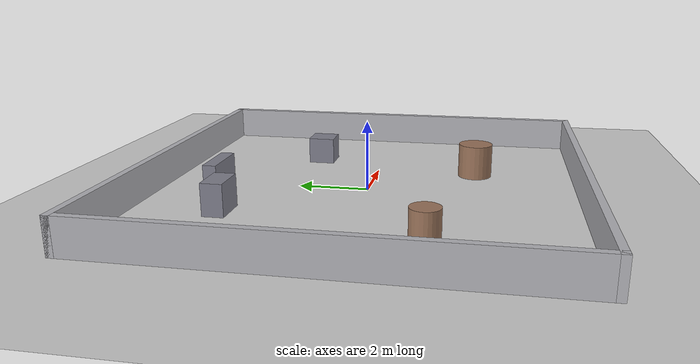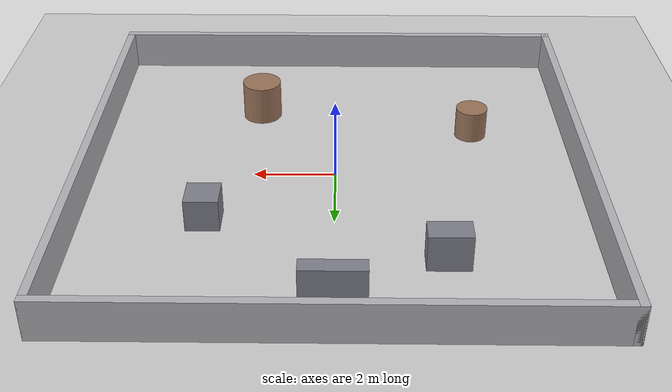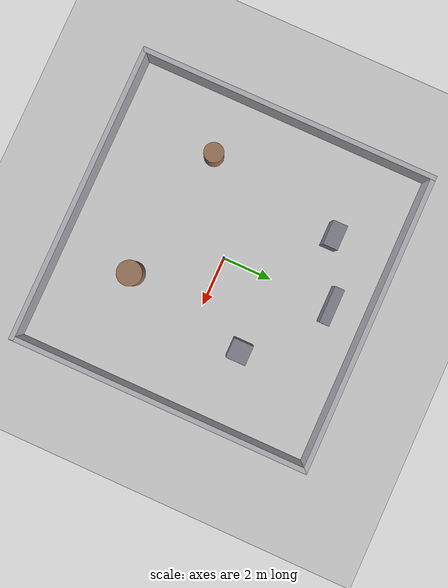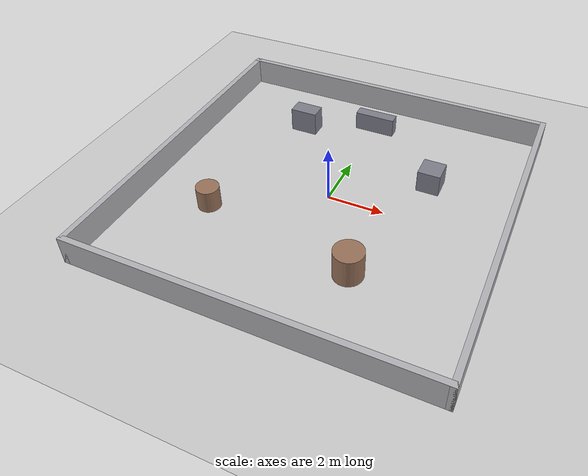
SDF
<?xml version="1.0" ?>
<sdf version="1.8">
  <world name="default">

    <!-- Physics -->
    <physics name="default_physics" type="ode">
      <max_step_size>0.001</max_step_size>
      <real_time_factor>1</real_time_factor>
      <real_time_update_rate>1000</real_time_update_rate>
    </physics>

    <!-- Plugins required for Ignition Gazebo -->
    <plugin filename="ignition-gazebo-physics-system" name="ignition::gazebo::systems::Physics"/>
    <plugin filename="ignition-gazebo-user-commands-system" name="ignition::gazebo::systems::UserCommands"/>
    <plugin filename="ignition-gazebo-scene-broadcaster-system" name="ignition::gazebo::systems::SceneBroadcaster"/>
    <plugin filename="ignition-gazebo-sensors-system" name="ignition::gazebo::systems::Sensors">
      <render_engine>ogre2</render_engine>
    </plugin>
    <plugin filename="ignition-gazebo-imu-system" name="ignition::gazebo::systems::Imu"/>
    <plugin filename="ignition-gazebo-contact-system" name="ignition::gazebo::systems::Contact"/>

    <!-- Lighting - simplified for better compatibility -->
    <light name="sun" type="directional">
      <cast_shadows>false</cast_shadows>
      <pose>0 0 10 0 0 0</pose>
      <diffuse>0.8 0.8 0.8 1</diffuse>
      <specular>0.1 0.1 0.1 1</specular>
      <direction>-0.5 0.5 -1</direction>
    </light>

    <!-- Ground Plane -->
    <model name="ground_plane">
      <static>true</static>
      <link name="link">
        <collision name="collision">
          <geometry>
            <plane>
              <normal>0 0 1</normal>
              <size>100 100</size>
            </plane>
          </geometry>
          <surface>
            <friction>
              <ode>
                <mu>100</mu>
                <mu2>50</mu2>
              </ode>
            </friction>
          </surface>
        </collision>
        <visual name="visual">
          <cast_shadows>false</cast_shadows>
          <geometry>
            <plane>
              <normal>0 0 1</normal>
              <size>100 100</size>
            </plane>
          </geometry>
          <material>
            <ambient>0.8 0.8 0.8 1</ambient>
            <diffuse>0.8 0.8 0.8 1</diffuse>
            <specular>0.8 0.8 0.8 1</specular>
          </material>
        </visual>
      </link>
    </model>

    <model name="wall_north">
      <static>true</static>
      <pose>0.0 6.0 0.5 0 0 0</pose>
      <link name="link">
        <collision name="collision">
          <geometry><box><size>12.2 0.2 1.0</size></box></geometry>
        </collision>
        <visual name="visual">
          <geometry><box><size>12.2 0.2 1.0</size></box></geometry>
          <material>
            <ambient>0.7 0.7 0.72 1</ambient>
            <diffuse>0.7 0.7 0.72 1</diffuse>
          </material>
        </visual>
      </link>
    </model>

    <model name="wall_south">
      <static>true</static>
      <pose>0.0 -6.0 0.5 0 0 0</pose>
      <link name="link">
        <collision name="collision">
          <geometry><box><size>12.2 0.2 1.0</size></box></geometry>
        </collision>
        <visual name="visual">
          <geometry><box><size>12.2 0.2 1.0</size></box></geometry>
          <material>
            <ambient>0.7 0.7 0.72 1</ambient>
            <diffuse>0.7 0.7 0.72 1</diffuse>
          </material>
        </visual>
      </link>
    </model>

    <model name="wall_east">
      <static>true</static>
      <pose>6.0 0.0 0.5 0 0 0</pose>
      <link name="link">
        <collision name="collision">
          <geometry><box><size>0.2 12.2 1.0</size></box></geometry>
        </collision>
        <visual name="visual">
          <geometry><box><size>0.2 12.2 1.0</size></box></geometry>
          <material>
            <ambient>0.7 0.7 0.72 1</ambient>
            <diffuse>0.7 0.7 0.72 1</diffuse>
          </material>
        </visual>
      </link>
    </model>

    <model name="wall_west">
      <static>true</static>
      <pose>-6.0 0.0 0.5 0 0 0</pose>
      <link name="link">
        <collision name="collision">
          <geometry><box><size>0.2 12.2 1.0</size></box></geometry>
        </collision>
        <visual name="visual">
          <geometry><box><size>0.2 12.2 1.0</size></box></geometry>
          <material>
            <ambient>0.7 0.7 0.72 1</ambient>
            <diffuse>0.7 0.7 0.72 1</diffuse>
          </material>
        </visual>
      </link>
    </model>

    <model name="obstacle_box_a">
      <static>true</static>
      <pose>3.0 2.0 0.4 0 0 0</pose>
      <link name="link">
        <collision name="collision">
          <geometry><box><size>0.8 0.8 0.8</size></box></geometry>
        </collision>
        <visual name="visual">
          <geometry><box><size>0.8 0.8 0.8</size></box></geometry>
          <material>
            <ambient>0.5 0.5 0.55 1</ambient>
            <diffuse>0.5 0.5 0.55 1</diffuse>
          </material>
        </visual>
      </link>
    </model>

    <model name="obstacle_box_b">
      <static>true</static>
      <pose>-2.5 3.5 0.45 0 0 0</pose>
      <link name="link">
        <collision name="collision">
          <geometry><box><size>1.0 0.6 0.9</size></box></geometry>
        </collision>
        <visual name="visual">
          <geometry><box><size>1.0 0.6 0.9</size></box></geometry>
          <material>
            <ambient>0.5 0.5 0.55 1</ambient>
            <diffuse>0.5 0.5 0.55 1</diffuse>
          </material>
        </visual>
      </link>
    </model>

    <model name="obstacle_wall_c">
      <static>true</static>
      <pose>0.0 4.5 0.35 0 0 0</pose>
      <link name="link">
        <collision name="collision">
          <geometry><box><size>1.5 0.4 0.7</size></box></geometry>
        </collision>
        <visual name="visual">
          <geometry><box><size>1.5 0.4 0.7</size></box></geometry>
          <material>
            <ambient>0.5 0.5 0.55 1</ambient>
            <diffuse>0.5 0.5 0.55 1</diffuse>
          </material>
        </visual>
      </link>
    </model>

    <model name="obstacle_cyl_a">
      <static>true</static>
      <pose>2.0 -3.0 0.5 0 0 0</pose>
      <link name="link">
        <collision name="collision">
          <geometry><cylinder><radius>0.5</radius><length>1.0</length></cylinder></geometry>
        </collision>
        <visual name="visual">
          <geometry><cylinder><radius>0.5</radius><length>1.0</length></cylinder></geometry>
          <material>
            <ambient>0.6 0.45 0.35 1</ambient>
            <diffuse>0.6 0.45 0.35 1</diffuse>
          </material>
        </visual>
      </link>
    </model>

    <model name="obstacle_cyl_b">
      <static>true</static>
      <pose>-3.5 -2.0 0.4 0 0 0</pose>
      <link name="link">
        <collision name="collision">
          <geometry><cylinder><radius>0.4</radius><length>0.8</length></cylinder></geometry>
        </collision>
        <visual name="visual">
          <geometry><cylinder><radius>0.4</radius><length>0.8</length></cylinder></geometry>
          <material>
            <ambient>0.6 0.45 0.35 1</ambient>
            <diffuse>0.6 0.45 0.35 1</diffuse>
          </material>
        </visual>
      </link>
    </model>

    <!-- Scene settings -->
    <scene>
      <ambient>0.6 0.6 0.6 1</ambient>
      <background>0.7 0.7 0.7 1</background>
      <shadows>false</shadows>
    </scene>

    <!-- Gravity -->
    <gravity>0 0 -9.8</gravity>
    <magnetic_field>6e-06 2.3e-05 -4.2e-05</magnetic_field>
    <atmosphere type="adiabatic"/>

    <!-- Spherical coordinates -->
    <spherical_coordinates>
      <surface_model>EARTH_WGS84</surface_model>
      <latitude_deg>0</latitude_deg>
      <longitude_deg>0</longitude_deg>
      <elevation>0</elevation>
      <heading_deg>0</heading_deg>
    </spherical_coordinates>

  </world>
</sdf>
